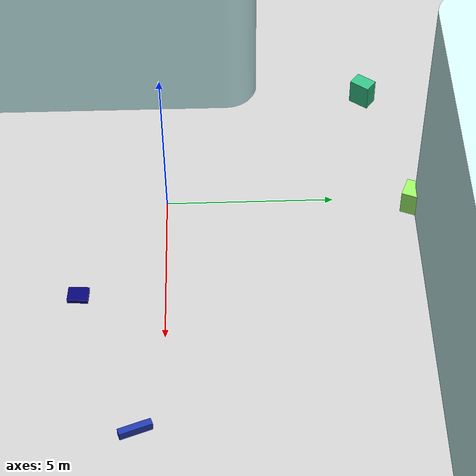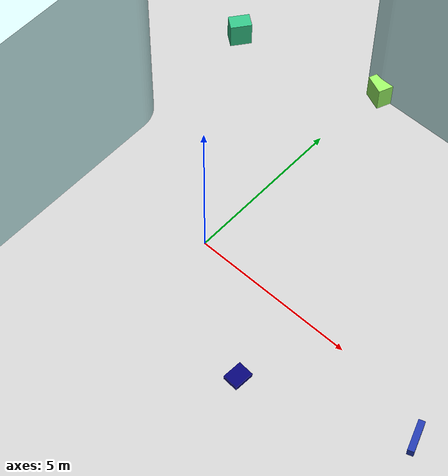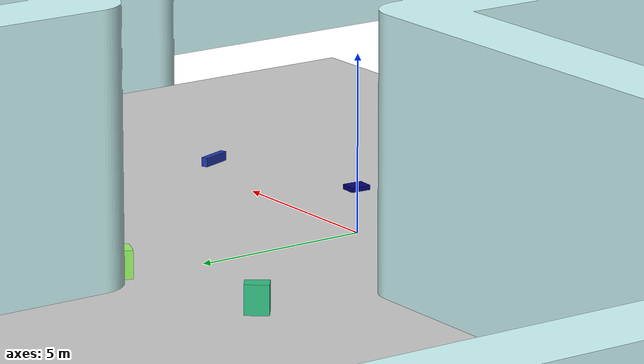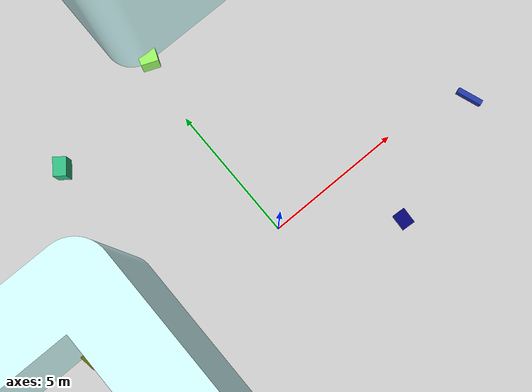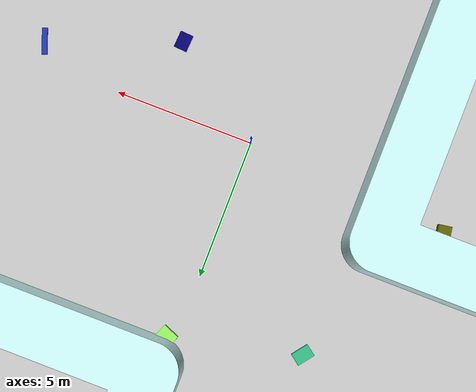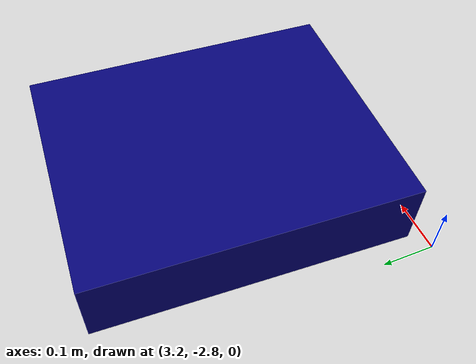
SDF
<?xml version="1.0" ?>
<sdf version="1.6">
  <world name="default">
    <atmosphere type="adiabatic"/>
    <gravity>0 0 -9.8</gravity>
    <model name="box">
      <allow_auto_disable>0</allow_auto_disable>
      <static>1</static>
      <pose frame="">-7.42235 0.706668 0.418922 0 -0 1.72039</pose>
      <link name="link">
        <kinematic>0</kinematic>
        <pose frame="">0 0 0 0 -0 0</pose>
        <gravity>1</gravity>
        <self_collide>0</self_collide>
        <collision name="collision">
          <geometry>
            <box>
              <size>0.865353 0.481639 0.837843</size>
            </box>
          </geometry>
          <max_contacts>20</max_contacts>
          <pose frame="">0 0 0 0 -0 0</pose>
        </collision>
        <visual name="visual">
          <geometry>
            <box>
              <size>0.865353 0.481639 0.837843</size>
            </box>
          </geometry>
          <material>
            <diffuse>0.376470588235 0.4 0.0078431372549 1</diffuse>
            <ambient>0.376471 0.4 0.00784314 1</ambient>
          </material>
          <cast_shadows>1</cast_shadows>
          <transparency>0.0</transparency>
          <pose frame="">0 0 0 0 -0 0</pose>
        </visual>
      </link>
      <self_collide>0</self_collide>
    </model>
    <model name="box_4">
      <allow_auto_disable>0</allow_auto_disable>
      <static>1</static>
      <pose frame="">0.372365 7.47656 0.393671 0 0 -0.385089</pose>
      <link name="link">
        <kinematic>0</kinematic>
        <pose frame="">0 0 0 0 -0 0</pose>
        <gravity>1</gravity>
        <self_collide>0</self_collide>
        <collision name="collision">
          <geometry>
            <box>
              <size>0.627522 0.771541 0.787342</size>
            </box>
          </geometry>
          <max_contacts>20</max_contacts>
          <pose frame="">0 0 0 0 -0 0</pose>
        </collision>
        <visual name="visual">
          <geometry>
            <box>
              <size>0.627522 0.771541 0.787342</size>
            </box>
          </geometry>
          <material>
            <diffuse>0.603921568627 0.96862745098 0.392156862745 1</diffuse>
            <ambient>0.603922 0.968627 0.392157 1</ambient>
          </material>
          <cast_shadows>1</cast_shadows>
          <transparency>0.0</transparency>
          <pose frame="">0 0 0 0 -0 0</pose>
        </visual>
      </link>
      <self_collide>0</self_collide>
    </model>
    <model name="box_3">
      <allow_auto_disable>0</allow_auto_disable>
      <static>1</static>
      <pose frame="">8.04191 -0.74132 0.130771 0 -0 1.91751</pose>
      <link name="link">
        <kinematic>0</kinematic>
        <pose frame="">0 0 0 0 -0 0</pose>
        <gravity>1</gravity>
        <self_collide>0</self_collide>
        <collision name="collision">
          <geometry>
            <box>
              <size>0.928237 0.190949 0.261542</size>
            </box>
          </geometry>
          <max_contacts>20</max_contacts>
          <pose frame="">0 0 0 0 -0 0</pose>
        </collision>
        <visual name="visual">
          <geometry>
            <box>
              <size>0.928237 0.190949 0.261542</size>
            </box>
          </geometry>
          <material>
            <diffuse>0.129411764706 0.219607843137 0.670588235294 1</diffuse>
            <ambient>0.129412 0.219608 0.670588 1</ambient>
          </material>
          <cast_shadows>1</cast_shadows>
          <transparency>0.0</transparency>
          <pose frame="">0 0 0 0 -0 0</pose>
        </visual>
      </link>
      <self_collide>0</self_collide>
    </model>
    <model name="box_2">
      <allow_auto_disable>0</allow_auto_disable>
      <static>1</static>
      <pose frame="">-4.33463 6.26253 0.412399 0 -0 0.923592</pose>
      <link name="link">
        <kinematic>0</kinematic>
        <pose frame="">0 0 0 0 -0 0</pose>
        <gravity>1</gravity>
        <self_collide>0</self_collide>
        <collision name="collision">
          <geometry>
            <box>
              <size>0.662915 0.456572 0.824797</size>
            </box>
          </geometry>
          <max_contacts>20</max_contacts>
          <pose frame="">0 0 0 0 -0 0</pose>
        </collision>
        <visual name="visual">
          <geometry>
            <box>
              <size>0.662915 0.456572 0.824797</size>
            </box>
          </geometry>
          <material>
            <diffuse>0.196078431373 0.749019607843 0.517647058824 1</diffuse>
            <ambient>0.196078 0.74902 0.517647 1</ambient>
          </material>
          <cast_shadows>1</cast_shadows>
          <transparency>0.0</transparency>
          <pose frame="">0 0 0 0 -0 0</pose>
        </visual>
      </link>
      <self_collide>0</self_collide>
    </model>
    <model name="box_1">
      <allow_auto_disable>0</allow_auto_disable>
      <static>1</static>
      <pose frame="">3.49184 -2.48985 0.068261 0 0 -1.63291</pose>
      <link name="link">
        <kinematic>0</kinematic>
        <pose frame="">0 0 0 0 -0 0</pose>
        <gravity>1</gravity>
        <self_collide>0</self_collide>
        <collision name="collision">
          <geometry>
            <box>
              <size>0.595339 0.475729 0.136522</size>
            </box>
          </geometry>
          <max_contacts>20</max_contacts>
          <pose frame="">0 0 0 0 -0 0</pose>
        </collision>
        <visual name="visual">
          <geometry>
            <box>
              <size>0.595339 0.475729 0.136522</size>
            </box>
          </geometry>
          <material>
            <diffuse>0.0156862745098 0.0078431372549 0.450980392157 1</diffuse>
            <ambient>0.0156863 0.00784314 0.45098 1</ambient>
          </material>
          <cast_shadows>1</cast_shadows>
          <transparency>0.0</transparency>
          <pose frame="">0 0 0 0 -0 0</pose>
        </visual>
      </link>
      <self_collide>0</self_collide>
    </model>
    <include>
      <pose frame="">0 0 2.5 0 -0 0</pose>
      <static>1</static>
      <uri>model://pcg_walls_test_walls</uri>
      <name>pcg_walls_test_walls</name>
    </include>
    <include>
      <pose frame="">0 0 0 0 -0 0</pose>
      <static>1</static>
      <uri>model://ground_plane</uri>
      <name>ground_plane</name>
    </include>
    <include>
      <uri>model://ground_plane</uri>
    </include>
    <include>
      <uri>model://sun</uri>
    </include>
    <physics default="1" name="default_physics" type="ode">
      <real_time_update_rate>1000.0</real_time_update_rate>
      <real_time_factor>1.0</real_time_factor>
      <max_step_size>0.001</max_step_size>
      <max_contacts>20</max_contacts>
      <ode>
        <constraints>
          <cfm>0.0</cfm>
          <erp>0.2</erp>
          <contact_max_correcting_vel>100.0</contact_max_correcting_vel>
          <contact_surface_layer>0.001</contact_surface_layer>
        </constraints>
        <solver>
          <friction_model>pyramid_model</friction_model>
          <iters>50</iters>
          <use_dynamic_moi_rescaling>0</use_dynamic_moi_rescaling>
          <min_step_size>0.0001</min_step_size>
          <sor>1.3</sor>
          <precon_iters>0</precon_iters>
          <type>quick</type>
        </solver>
      </ode>
    </physics>
    <wind>
      <linear_velocity>0 0 0</linear_velocity>
    </wind>
  </world>
</sdf>

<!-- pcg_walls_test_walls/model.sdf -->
<sdf version="1.6">
  <model name="pcg_walls_test_walls">
    <allow_auto_disable>0</allow_auto_disable>
    <link name="mesh">
      <kinematic>0</kinematic>
      <pose frame="">0 0 0 0 -0 0</pose>
      <gravity>1</gravity>
      <self_collide>0</self_collide>
      <collision name="collision">
        <geometry>
          <mesh>
            <scale>1 1 1</scale>
            <uri>file:///home/ross/Projects/AIIA/risk_metric_maps/notebooks/teststl/meshes/pcg_walls_test_walls/meshes/qUwYeQXbgT.stl</uri>
          </mesh>
        </geometry>
        <max_contacts>20</max_contacts>
        <pose frame="">3.80686 -1.41448 -5 0 -0 0</pose>
      </collision>
      <visual name="visual">
        <geometry>
          <mesh>
            <scale>1 1 1</scale>
            <uri>file:///home/ross/Projects/AIIA/risk_metric_maps/notebooks/teststl/meshes/pcg_walls_test_walls/meshes/yDTLilNbdR.stl</uri>
          </mesh>
        </geometry>
        <material>
          <diffuse>0.83137254902 1.0 1.0 1</diffuse>
          <ambient>0.831373 1 1 1</ambient>
        </material>
        <cast_shadows>1</cast_shadows>
        <transparency>0.0</transparency>
        <pose frame="">3.80686 -1.41448 -5 0 -0 0</pose>
      </visual>
    </link>
    <pose frame="">0 0 5 0 -0 0</pose>
    <static>1</static>
    <self_collide>0</self_collide>
  </model>
</sdf>
